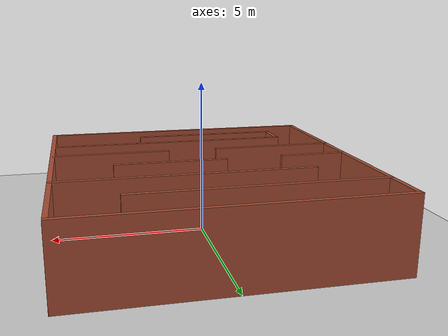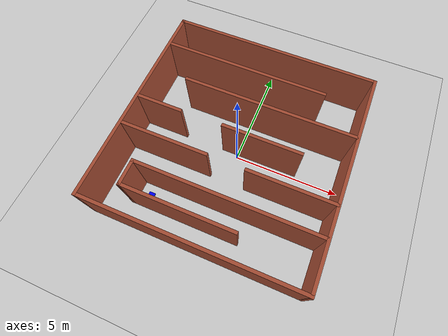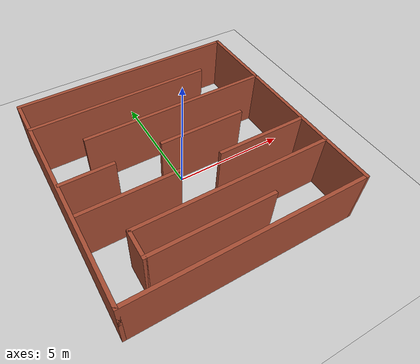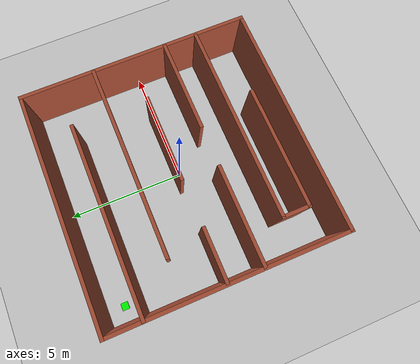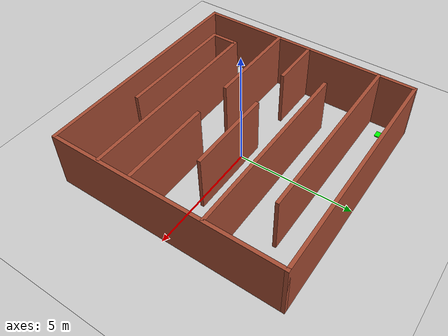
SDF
<sdf version="1.7">
 <world name="default">
  <light name="sun" type="directional">
   <pose>0 0 10 0 -0 0</pose>
   <diffuse>0.8 0.8 0.8 1</diffuse>
   <specular>0.2 0.2 0.2 1</specular>
   <attenuation>
    <range>1000</range>
    <constant>0.9</constant>
    <linear>0.01</linear>
    <quadratic>0.001</quadratic>
   </attenuation>
   <direction>-0.5 0.1 -0.9</direction>
   <spot><inner_angle>0</inner_angle><outer_angle>0</outer_angle><falloff>0</falloff></spot>
  </light>
  <model name="ground_plane">
   <static>1</static>
   <link name="link">
    <collision name="collision">
     <geometry><plane><normal>0 0 1</normal><size>100 100</size></plane></geometry>
     <surface>
      <contact><collide_bitmask>65535</collide_bitmask></contact>
      <friction><ode><mu>100</mu><mu2>50</mu2></ode></friction>
     </surface>
    </collision>
    <visual name="visual">
     <cast_shadows>0</cast_shadows>
     <geometry><plane><normal>0 0 1</normal><size>100 100</size></plane></geometry>
     <material>
      <script><uri>file://media/materials/scripts/gazebo.material</uri><name>Gazebo/Grey</name></script>
     </material>
    </visual>
   </link>
  </model>
  <gravity>0 0 -9.8</gravity>
  <magnetic_field>6e-06 2.3e-05 -4.2e-05</magnetic_field>
  <atmosphere type="adiabatic"/>
  <physics type="ode">
   <max_step_size>0.001</max_step_size>
   <real_time_factor>1</real_time_factor>
   <real_time_update_rate>1000</real_time_update_rate>
  </physics>
  <scene><ambient>0.4 0.4 0.4 1</ambient><background>0.7 0.7 0.7 1</background><shadows>1</shadows></scene>
  <audio><device>default</device></audio>
  <spherical_coordinates>
   <surface_model>EARTH_WGS84</surface_model>
   <latitude_deg>0</latitude_deg>
   <longitude_deg>0</longitude_deg>
   <elevation>0</elevation>
   <heading_deg>0</heading_deg>
  </spherical_coordinates>
  <model name="simple_env">
   <pose>-0.062886 0.04182 0 0 -0 0</pose>
   <link name="Wall_100">
    <collision name="Wall_100_Collision">
     <geometry><box><size>3.75 0.15 2.5</size></box></geometry>
     <pose>0 0 1.25 0 -0 0</pose>
    </collision>
    <visual name="Wall_100_Visual">
     <pose>0 0 1.25 0 -0 0</pose>
     <geometry><box><size>3.75 0.15 2.5</size></box></geometry>
     <material>
      <script><uri>file://media/materials/scripts/gazebo.material</uri><name>Gazebo/Bricks</name></script>
      <ambient>1 1 1 1</ambient>
     </material>
     <meta><layer>0</layer></meta>
    </visual>
    <pose>1.11803 0.168397 0 0 -0 0</pose>
   </link>
   <link name="Wall_105">
    <collision name="Wall_105_Collision">
     <geometry><box><size>4.25 0.15 2.5</size></box></geometry>
     <pose>0 0 1.25 0 -0 0</pose>
    </collision>
    <visual name="Wall_105_Visual">
     <pose>0 0 1.25 0 -0 0</pose>
     <geometry><box><size>4.25 0.15 2.5</size></box></geometry>
     <material>
      <script><uri>file://media/materials/scripts/gazebo.material</uri><name>Gazebo/Bricks</name></script>
      <ambient>1 1 1 1</ambient>
     </material>
     <meta><layer>0</layer></meta>
    </visual>
    <pose>-2.85784 -1.3728 0 0 -0 0</pose>
   </link>
   <link name="Wall_108">
    <collision name="Wall_108_Collision">
     <geometry><box><size>4 0.15 2.5</size></box></geometry>
     <pose>0 0 1.25 0 -0 0</pose>
    </collision>
    <visual name="Wall_108_Visual">
     <pose>0 0 1.25 0 -0 0</pose>
     <geometry><box><size>4 0.15 2.5</size></box></geometry>
     <material>
      <script><uri>file://media/materials/scripts/gazebo.material</uri><name>Gazebo/Bricks</name></script>
      <ambient>1 1 1 1</ambient>
     </material>
     <meta><layer>0</layer></meta>
    </visual>
    <pose>2.9474 -1.37965 0 0 -0 0</pose>
   </link>
   <link name="Wall_110">
    <collision name="Wall_110_Collision">
     <geometry><box><size>8.5 0.15 2.5</size></box></geometry>
     <pose>0 0 1.25 0 -0 0</pose>
    </collision>
    <visual name="Wall_110_Visual">
     <pose>0 0 1.25 0 -0 0</pose>
     <geometry><box><size>8.5 0.15 2.5</size></box></geometry>
     <material>
      <script><uri>file://media/materials/scripts/gazebo.material</uri><name>Gazebo/Bricks</name></script>
      <ambient>1 1 1 1</ambient>
     </material>
     <meta><layer>0</layer></meta>
    </visual>
    <pose>0.675973 -2.7907 0 0 -0 3.14159</pose>
   </link>
   <link name="Wall_114">
    <collision name="Wall_114_Collision">
     <geometry><box><size>1.25 0.15 2.5</size></box></geometry>
     <pose>0 0 1.25 0 -0 0</pose>
    </collision>
    <visual name="Wall_114_Visual">
     <pose>0 0 1.25 0 -0 0</pose>
     <geometry><box><size>1.25 0.15 2.5</size></box></geometry>
     <material>
      <script><uri>file://media/materials/scripts/gazebo.material</uri><name>Gazebo/Bricks</name></script>
      <ambient>1 1 1 1</ambient>
     </material>
     <meta><layer>0</layer></meta>
    </visual>
    <pose>-3.49903 -3.3407 0 0 -0 -1.5708</pose>
   </link>
   <link name="Wall_115">
    <collision name="Wall_115_Collision">
     <geometry><box><size>5.25 0.15 2.5</size></box></geometry>
     <pose>0 0 1.25 0 -0 0</pose>
    </collision>
    <visual name="Wall_115_Visual">
     <pose>0 0 1.25 0 -0 0</pose>
     <geometry><box><size>5.25 0.15 2.5</size></box></geometry>
     <material>
      <script><uri>file://media/materials/scripts/gazebo.material</uri><name>Gazebo/Bricks</name></script>
      <ambient>1 1 1 1</ambient>
     </material>
     <meta><layer>0</layer></meta>
    </visual>
    <pose>-0.949027 -3.8907 0 0 -0 0</pose>
   </link>
   <link name="Wall_41">
    <collision name="Wall_41_Collision">
     <geometry><box><size>10 0.15 2.5</size></box></geometry>
     <pose>0 0 1.25 0 -0 0</pose>
    </collision>
    <visual name="Wall_41_Visual">
     <pose>0 0 1.25 0 -0 0</pose>
     <geometry><box><size>10 0.15 2.5</size></box></geometry>
     <material>
      <script><uri>file://media/materials/scripts/gazebo.material</uri><name>Gazebo/Bricks</name></script>
      <ambient>1 1 1 1</ambient>
     </material>
     <meta><layer>0</layer></meta>
    </visual>
    <pose>0 4.925 0 0 -0 0</pose>
   </link>
   <link name="Wall_83">
    <collision name="Wall_83_Collision">
     <geometry><box><size>10 0.15 2.5</size></box></geometry>
     <pose>0 0 1.25 0 -0 0</pose>
    </collision>
    <visual name="Wall_83_Visual">
     <pose>0 0 1.25 0 -0 0</pose>
     <geometry><box><size>10 0.15 2.5</size></box></geometry>
     <material>
      <script><uri>file://media/materials/scripts/gazebo.material</uri><name>Gazebo/Bricks</name></script>
      <ambient>1 1 1 1</ambient>
     </material>
     <meta><layer>0</layer></meta>
    </visual>
    <pose>-4.925 0 0 0 -0 -1.5708</pose>
   </link>
   <link name="Wall_84">
    <collision name="Wall_84_Collision">
     <geometry><box><size>10 0.15 2.5</size></box></geometry>
     <pose>0 0 1.25 0 -0 0</pose>
    </collision>
    <visual name="Wall_84_Visual">
     <pose>0 0 1.25 0 -0 0</pose>
     <geometry><box><size>10 0.15 2.5</size></box></geometry>
     <material>
      <script><uri>file://media/materials/scripts/gazebo.material</uri><name>Gazebo/Bricks</name></script>
      <ambient>1 1 1 1</ambient>
     </material>
     <meta><layer>0</layer></meta>
    </visual>
    <pose>0 -4.925 0 0 -0 0</pose>
   </link>
   <link name="Wall_85">
    <collision name="Wall_85_Collision">
     <geometry><box><size>10 0.15 2.5</size></box></geometry>
     <pose>0 0 1.25 0 -0 0</pose>
    </collision>
    <visual name="Wall_85_Visual">
     <pose>0 0 1.25 0 -0 0</pose>
     <geometry><box><size>10 0.15 2.5</size></box></geometry>
     <material>
      <script><uri>file://media/materials/scripts/gazebo.material</uri><name>Gazebo/Bricks</name></script>
      <ambient>1 1 1 1</ambient>
     </material>
     <meta><layer>0</layer></meta>
    </visual>
    <pose>4.925 0 0 0 -0 1.5708</pose>
   </link>
   <link name="Wall_91">
    <collision name="Wall_91_Collision">
     <geometry><box><size>8 0.15 2.5</size></box></geometry>
     <pose>0 0 1.25 0 -0 0</pose>
    </collision>
    <visual name="Wall_91_Visual">
     <pose>0 0 1.25 0 -0 0</pose>
     <geometry><box><size>8 0.15 2.5</size></box></geometry>
     <material>
      <script><uri>file://media/materials/scripts/gazebo.material</uri><name>Gazebo/Bricks</name></script>
      <ambient>1 1 1 1</ambient>
     </material>
     <meta><layer>0</layer></meta>
    </visual>
    <pose>-0.973772 3.38264 0 0 -0 0</pose>
   </link>
   <link name="Wall_93">
    <collision name="Wall_93_Collision">
     <geometry><box><size>8.25 0.15 2.5</size></box></geometry>
     <pose>0 0 1.25 0 -0 0</pose>
    </collision>
    <visual name="Wall_93_Visual">
     <pose>0 0 1.25 0 -0 0</pose>
     <geometry><box><size>8.25 0.15 2.5</size></box></geometry>
     <material>
      <script><uri>file://media/materials/scripts/gazebo.material</uri><name>Gazebo/Bricks</name></script>
      <ambient>1 1 1 1</ambient>
     </material>
     <meta><layer>0</layer></meta>
    </visual>
    <pose>0.84785 1.79463 0 0 -0 3.14159</pose>
   </link>
   <link name="Wall_98">
    <collision name="Wall_98_Collision">
     <geometry><box><size>2.25 0.15 2.5</size></box></geometry>
     <pose>0 0 1.25 0 -0 0</pose>
    </collision>
    <visual name="Wall_98_Visual">
     <pose>0 0 1.25 0 -0 0</pose>
     <geometry><box><size>2.25 0.15 2.5</size></box></geometry>
     <material>
      <script><uri>file://media/materials/scripts/gazebo.material</uri><name>Gazebo/Bricks</name></script>
      <ambient>1 1 1 1</ambient>
     </material>
     <meta><layer>0</layer></meta>
    </visual>
    <pose>-3.80008 0.128397 0 0 -0 0</pose>
   </link>
   <static>1</static>
  </model>
  <model name="start_point_0">
   <link name="link">
    <inertial>
     <mass>1</mass>
     <inertia>
      <ixx>0.166667</ixx>
      <ixy>0</ixy>
      <ixz>0</ixz>
      <iyy>0.166667</iyy>
      <iyz>0</iyz>
      <izz>0.166667</izz>
     </inertia>
    </inertial>
    <visual name="visual">
     <geometry><box><size>0.3 0.3 0.05</size></box></geometry>
     <material>
      <script><name>Gazebo/Grey</name><uri>file://media/materials/scripts/gazebo.material</uri></script>
      <shader type="pixel"><normal_map>__default__</normal_map></shader>
      <ambient>0 1 0 1</ambient>
      <diffuse>0.7 0.7 0.7 1</diffuse>
      <specular>0.01 0.01 0.01 1</specular>
      <emissive>0 0 0 1</emissive>
     </material>
    </visual>
   </link>
   <static>0</static>
   <pose>-4.29761 4.17789 0.044954 0 -0 0</pose>
  </model>
  <model name="end_point_1">
   <link name="link">
    <inertial>
     <mass>1</mass>
     <inertia>
      <ixx>0.166667</ixx>
      <ixy>0</ixy>
      <ixz>0</ixz>
      <iyy>0.166667</iyy>
      <iyz>0</iyz>
      <izz>0.166667</izz>
     </inertia>
    </inertial>
    <visual name="visual">
     <geometry><box><size>0.3 0.3 0.05</size></box></geometry>
     <material>
      <script><name>Gazebo/Grey</name><uri>file://media/materials/scripts/gazebo.material</uri></script>
      <shader type="pixel"><normal_map>__default__</normal_map></shader>
      <ambient>0 0 1 1</ambient>
      <diffuse>0.7 0.7 0.7 1</diffuse>
      <specular>0.01 0.01 0.01 1</specular>
      <emissive>0 0 0 1</emissive>
     </material>
    </visual>
   </link>
   <static>0</static>
   <pose>-2.97014 -3.32553 0.034084 0 -0 0</pose>
  </model>
 </world>
</sdf>
